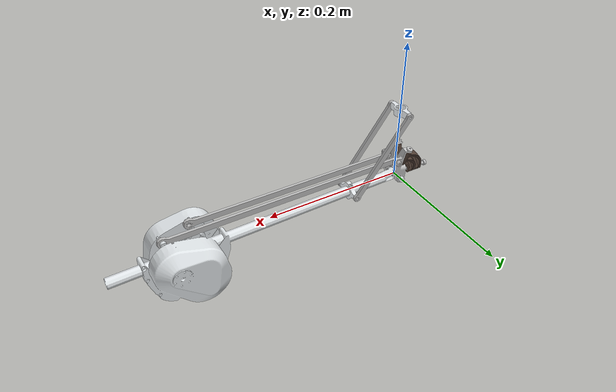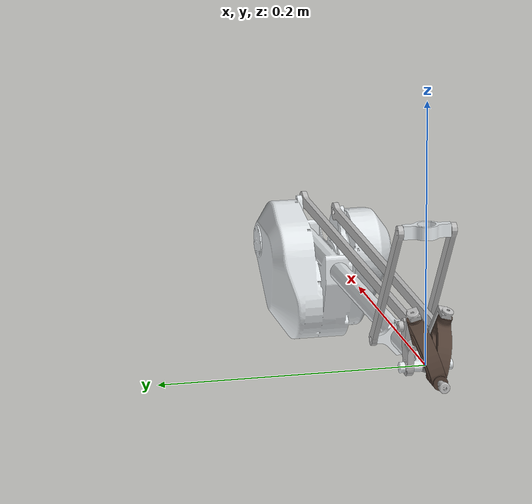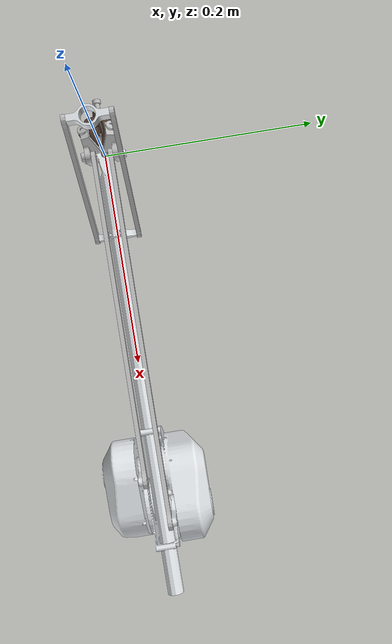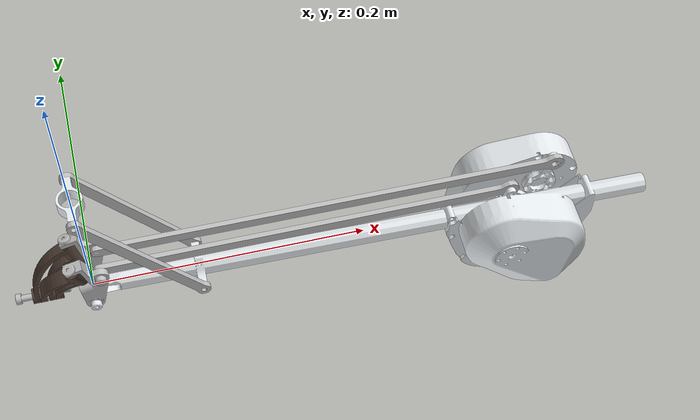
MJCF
<mujoco model="sfb_urdf">
  <compiler angle="radian" meshdir="meshes/"/>

  <option>
    <flag contact = 'disable'/>
  </option>

  <default>
    <motor ctrlrange="-8 8"/>
    <equality solref='0.00000001 1'/>
  </default>

  <asset>
    <mesh name="base_link" content_type="model/stl" file="base_link.STL"/>
    <mesh name="coupler1" content_type="model/stl" file="coupler1.STL"/>
    <mesh name="input1" content_type="model/stl" file="input1.STL"/>
    <mesh name="trans1" content_type="model/stl" file="trans1.STL"/>
    <mesh name="main" content_type="model/stl" file="main.STL"/>
    <mesh name="motor1" content_type="model/stl" file="motor1.STL"/>
    <mesh name="motor2" content_type="model/stl" file="motor2.STL"/>
    <mesh name="spring_link" content_type="model/stl" file="spring_link.STL"/>
    <mesh name="cart" content_type="model/stl" file="cart.STL"/>
    <mesh name="input2" content_type="model/stl" file="input2.STL"/>
    <mesh name="trans2" content_type="model/stl" file="trans2.STL"/>
    <mesh name="coupler2" content_type="model/stl" file="coupler2.STL"/>
  </asset>

  <equality>
  <joint joint1='alpha1' joint2='a3' polycoef='0 1 0 0 0'/>
  <joint joint1='alpha2' joint2='b3' polycoef='0 -1 0 0 0'/>
  <joint joint1='alpha1' joint2='m1' polycoef='0 -1 0 0 0'/>
  <joint joint1='alpha2' joint2='m2' polycoef='0 1 0 0 0'/>
  <connect body2="virtual_spring" body1="cart" anchor='0 0 0' active="true"/>
  <connect body2="virtual_spring" body1="cart" anchor='0 0 .1' />
  <connect body1="coupler2" body2="input2" anchor='-12.55 -13.37 44.90'/>
  </equality>

   <actuator>
    <motor name="motor_left" joint="alpha1" />
    <motor name="motor_right" joint="alpha2" />
  </actuator>

  <sensor>
    <jointpos name="theta1_pos" joint="alpha1" noise="0"/>
    <jointpos name="theta2_pos" joint="alpha2" noise="0"/>

    <jointvel name="theta1_vel" joint="alpha1" noise="0"/>
    <jointvel name="theta2_vel" joint="alpha2" noise="0"/>

    <jointactuatorfrc name="theta1_torque" joint="alpha1" noise="0"/>
    <jointactuatorfrc name="theta2_torque" joint="alpha2" noise="0"/>

    <force name="force" site="ft_sensor" />
    <torque name="torque" site="ft_sensor" />
    <gyro name='gyro' site='IMU' />
    <accelerometer name='accel' site='IMU' />
  </sensor>

  <worldbody>
    <geom type="mesh" contype="0" conaffinity="0" group="1" density="0" rgba="0.752941 0.752941 0.752941 1" mesh="base_link"/>
    <geom type="mesh" rgba="0.752941 0.752941 0.752941 1" mesh="base_link"/>
    <site name="ft_sensor" />
    <body name="virtual_spring">
      <joint name="spring" type='slide' pos='0 0 0' axis='0 0 1'  range="-.03784 .1" stiffness='1e3' frictionloss='.5'/>
      <inertial pos="0 0 0" quat="0.5 0.5 -0.5 0.5" mass="0.00274684" diaginertia="3.46349e-07 3.21133e-07 0.736045e-07"/>
    </body>
    <body name="coupler1">
      <inertial pos="-0.0214665 0.00597758 0.0200764" quat="0.688427 0.161395 0.351127 0.613783" mass="0.0211161" diaginertia="2.63206e-06 2.57749e-06 4.36038e-07"/>
      <joint name="a1" pos="0 0 0" axis="-1 0 0" range="-0.2894 1.2814"/>
      <geom type="mesh" contype="0" conaffinity="0" group="1" density="0" rgba="0.317647 0.247059 0.207843 1" mesh="coupler1"/>
      <geom type="mesh" rgba="0.317647 0.247059 0.207843 1" mesh="coupler1"/>
      <body name="input1">
        <inertial pos="0.000656363 0.0110988 0.0221827" quat="0.610877 -0.0379765 -0.0591635 0.788598" mass="0.012203" diaginertia="1.72444e-06 1.54334e-06 4.15502e-07"/>
        <joint name="a2" pos="0 0 0" axis="-0.25882 0.27564 0.925761" range="-3.14 3.14"/>
        <geom type="mesh" contype="0" conaffinity="0" group="1" density="0" rgba="0.752941 0.752941 0.752941 1" mesh="input1"/>
        <geom type="mesh" rgba="0.752941 0.752941 0.752941 1" mesh="input1"/>
        <body name="trans1" pos="0.0074508 0 0.02906">
          <inertial pos="0.169911 0.00806794 -0.000499884" quat="0.499264 0.500735 0.500735 0.499264" mass="0.0303651" diaginertia="0.000297036 0.000296908 2.17039e-07"/>
          <joint name="a3" pos="0 0 0" axis="0 -1 0" range="-3.14 3.14"/>
          <geom type="mesh" contype="0" conaffinity="0" group="1" density="0" rgba="0.752941 0.752941 0.752941 1" mesh="trans1"/>
          <geom type="mesh" rgba="0.752941 0.752941 0.752941 1" mesh="trans1"/>
        </body>
        <body name="main">
          <inertial pos="0.292142 4.61185e-09 -0.0166974" quat="0.492997 0.50545 0.506972 0.494423" mass="0.236859" diaginertia="0.00073988 0.000627033 0.000127058"/>
          <joint name="alpha1" pos="0 0 0" axis="0 -1 0" range="-1.3364 1.8052" damping="0.1" armature="0.01" frictionloss="0.2"/>
          <geom type="mesh" contype="0" conaffinity="0" group="1" density="0" rgba="0.898039 0.917647 0.929412 1" mesh="main"/>
          <geom type="mesh" rgba="0.898039 0.917647 0.929412 1" mesh="main"/>
          <site name="IMU" />
          <body name="motor1" pos="0.34 0 -0.0010003">
            <inertial pos="0.00223103 0.012088 0.0087017" quat="0.701755 0.0901732 0.0868345 0.701334" mass="0.004295" diaginertia="8.56773e-07 7.14947e-07 1.52662e-07"/>
            <joint name="m1" pos="0 0 0" axis="0 -1 0" range="-3.14 3.14"/>
            <geom type="mesh" contype="0" conaffinity="0" group="1" density="0" rgba="0.898039 0.917647 0.929412 1" mesh="motor1"/>
            <geom type="mesh" rgba="0.898039 0.917647 0.929412 1" mesh="motor1"/>
          </body>
          <body name="motor2" pos="0.3 0 0">
            <inertial pos="0.00223103 -0.012088 0.0087017" quat="0.701334 0.0868344 0.0901731 0.701755" mass="0.004295" diaginertia="8.56773e-07 7.14947e-07 1.52662e-07"/>
            <joint name="m2" pos="0 0 0" axis="0 -1 0" range="-3.14 3.14"/>
            <geom type="mesh" contype="0" conaffinity="0" group="1" density="0" rgba="0.898039 0.917647 0.929412 1" mesh="motor2"/>
            <geom type="mesh" rgba="0.898039 0.917647 0.929412 1" mesh="motor2"/>
          </body>
          <body name="spring_link" pos="0.0769759 0 -0.001925">
            <inertial pos="-0.038488 0 0.0523801" quat="0.671909 -0.220313 -0.220313 0.671909" mass="0.00886171" diaginertia="1.24524e-05 1.24144e-05 6.16037e-08"/>
            <joint name="s1" pos="0 0 0" axis="0 1 0" range="-3.14 3.14"/>
            <geom type="mesh" contype="0" conaffinity="0" group="1" density="0" rgba="0.752941 0.752941 0.752941 1" mesh="spring_link"/>
            <geom type="mesh" rgba="0.752941 0.752941 0.752941 1" mesh="spring_link"/>
            <body name="cart" pos="-0.0769759 0 0.10476">
              <inertial pos="-4.35773e-10 -2.72351e-10 -1.43126e-11" quat="0.5 0.5 -0.5 0.5" mass="0.00274684" diaginertia="3.46349e-07 3.21133e-07 0.736045e-07"/>
              <joint name="s2" pos="0 0 0" axis="0 1 0" range="-3.14 3.14"/>
              <geom type="mesh" contype="0" conaffinity="0" group="1" density="0" rgba="0.898039 0.917647 0.929412 1" mesh="cart"/>
              <geom type="mesh" rgba="0.898039 0.917647 0.929412 1" mesh="cart"/>
            </body>
          </body>
          <body name="input2">
            <inertial pos="0.000656371 -0.0110989 0.0221827" quat="0.788597 -0.0591656 -0.0379758 0.610879" mass="0.012203" diaginertia="1.72444e-06 1.54334e-06 4.15499e-07"/>
            <joint name="alpha2" pos="0 0 0" axis="0 -1 0" range="-1.3364 1.8052" damping="0.1" armature="0.01" frictionloss="0.2"/>
            <geom type="mesh" contype="0" conaffinity="0" group="1" density="0" rgba="0.752941 0.752941 0.752941 1" mesh="input2"/>
            <geom type="mesh" rgba="0.752941 0.752941 0.752941 1" mesh="input2"/>
            <body name="trans2" pos="0.0074508 0 0.02906">
              <inertial pos="0.116418 -0.0118608 -4.52159e-07" quat="0.707404 0.70681 0 0" mass="0.000534365" diaginertia="6.78259e-09 6.78253e-09 4.59964e-09"/>
              <joint name="b3" pos="0 0 0" axis="0 -1 0" range="-3.14 3.14"/>
              <geom type="mesh" contype="0" conaffinity="0" group="1" density="0" rgba="0.752941 0.752941 0.752941 1" mesh="trans2"/>
              <geom type="mesh" rgba="0.752941 0.752941 0.752941 1" mesh="trans2"/>
            </body>
          </body>
        </body>
      </body>
    </body>
    <body name="coupler2">
      <inertial pos="-0.0187358 -0.00571384 0.0191907" quat="0.933558 0.136016 0.328156 0.0477831" mass="0.0197491" diaginertia="2.01569e-06 1.99206e-06 3.31575e-07"/>
      <joint name="b1" pos="0 0 0" axis="-1 0 0" range="-1.2814 0.2894"/>
      <geom type="mesh" contype="0" conaffinity="0" group="1" density="0" rgba="0.317647 0.247059 0.207843 1" mesh="coupler2"/>
      <geom type="mesh" rgba="0.317647 0.247059 0.207843 1" mesh="coupler2"/>
    </body>
  </worldbody>
</mujoco>
